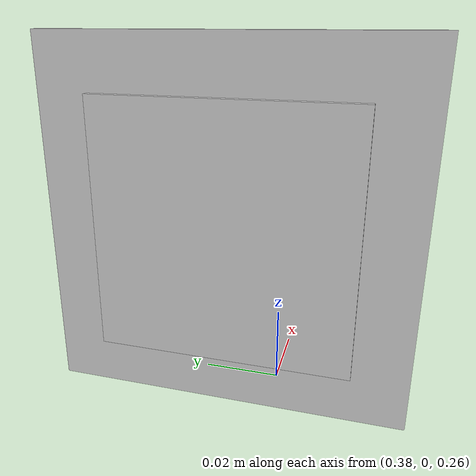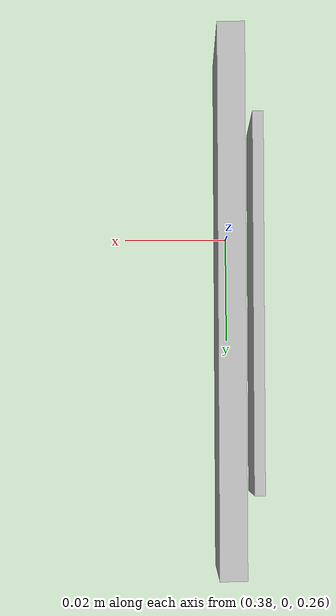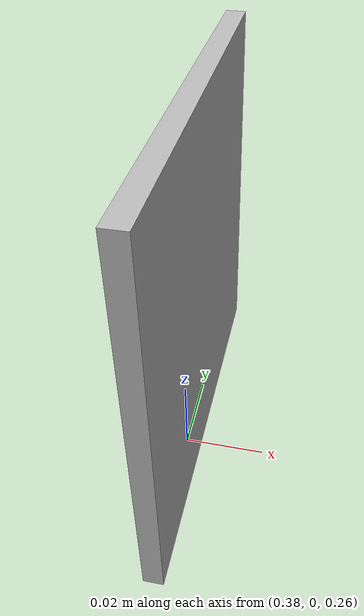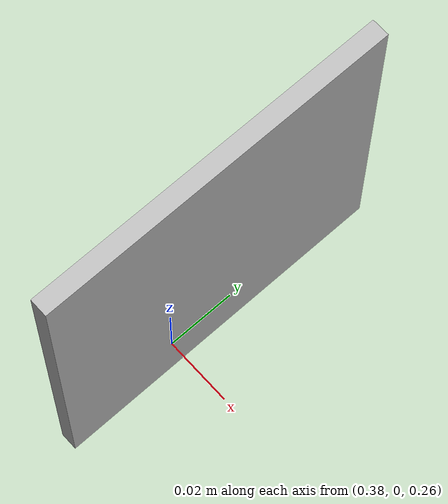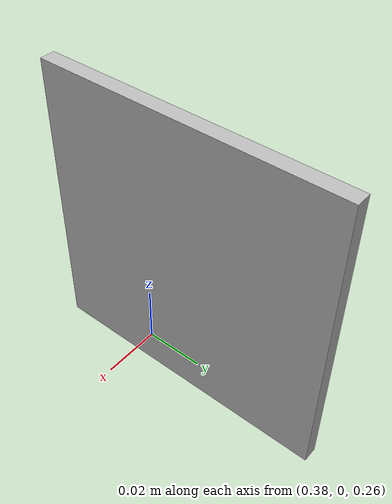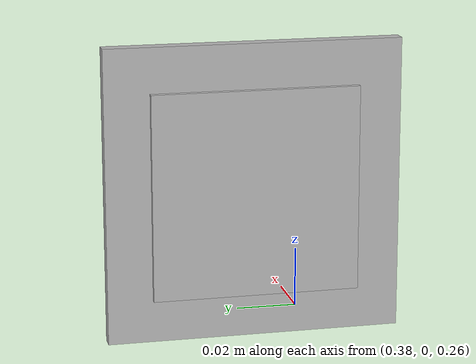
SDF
<sdf version="1.6">
 <world name="default">
  <light name="sun" type="directional">
   <pose>0 0 10 0 -0 0</pose>
   <diffuse>0.8 0.8 0.8 1</diffuse>
   <specular>0.2 0.2 0.2 1</specular>
   <attenuation>
    <range>1000</range>
    <constant>0.9</constant>
    <linear>0.01</linear>
    <quadratic>0.001</quadratic>
   </attenuation>
   <direction>-0.5 0.1 -0.9</direction>
  </light>
  <model name="ground_plane">
   <static>1</static>
   <link name="link">
    <collision name="collision">
     <geometry><plane><normal>0 0 1</normal><size>100 100</size></plane></geometry>
     <surface><friction><ode><mu>100</mu><mu2>50</mu2></ode></friction></surface>
    </collision>
    <visual name="visual">
     <cast_shadows>0</cast_shadows>
     <geometry><plane><normal>0 0 1</normal><size>100 100</size></plane></geometry>
     <material>
      <script><uri>file://media/materials/scripts/gazebo.material</uri><name>Gazebo/Grey</name></script>
     </material>
    </visual>
   </link>
  </model>
  <gravity>0 0 -9.8</gravity>
  <magnetic_field>6e-06 2.3e-05 -4.2e-05</magnetic_field>
  <atmosphere type="adiabatic"/>
  <physics name="default_physics" default="0" type="ode">
   <max_step_size>0.001</max_step_size>
   <real_time_factor>1</real_time_factor>
   <real_time_update_rate>1000</real_time_update_rate>
  </physics>
  <scene><ambient>1 1 1 1</ambient><background>0.7 0.7 0.7 1</background><shadows>1</shadows></scene>
  <audio><device>default</device></audio>
  <spherical_coordinates>
   <surface_model>EARTH_WGS84</surface_model>
   <latitude_deg>0</latitude_deg>
   <longitude_deg>0</longitude_deg>
   <elevation>0</elevation>
   <heading_deg>0</heading_deg>
  </spherical_coordinates>
  <model name="mark_ar_beijing_0">
   <static>1</static>
   <link name="link">
    <collision name="collision"><geometry><box><size>0.005 0.1 0.1</size></box></geometry></collision>
    <visual name="visual"><geometry><box><size>0.005 0.1 0.1</size></box></geometry></visual>
   </link>
   <static>1</static>
   <link name="mark_ar_track0::link">
    <pose>-0.005 0 0 0 -0 0</pose>
    <collision name="collision"><geometry><box><size>0.002 0.07 0.07</size></box></geometry></collision>
    <visual name="visual">
     <geometry><box><size>0.002 0.07 0.07</size></box></geometry>
     <material>
      <script>
       <uri>model://mark_ar_track0/materials/scripts</uri>
       <uri>model://mark_ar_track0/materials/textures</uri>
       <name>Mark_ar_track0/Diffuse</name>
      </script>
     </material>
    </visual>
   </link>
   <pose>0.37982 0.014659 0.301389 0 -0 0</pose>
  </model>
 </world>
</sdf>
